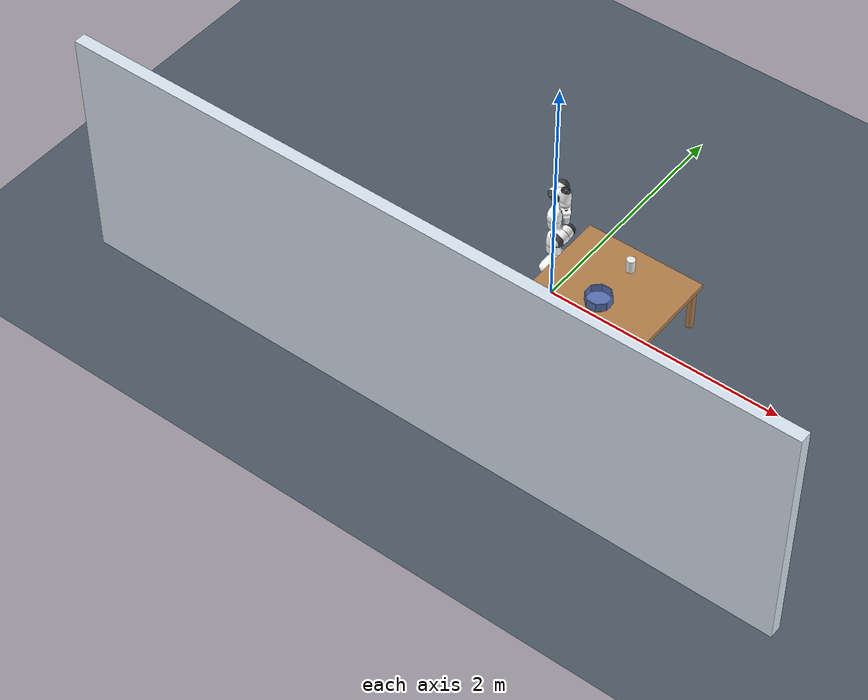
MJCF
<mujoco model="cup_pour_scene">

  <!--
    meshdir must be set at the top level: when panda.xml is included,
    MuJoCo ignores the included file's compiler tag, so we need to
    point at the menagerie's assets directory here.
  -->
  <compiler angle="radian" autolimits="true"
            meshdir="../../mujoco_menagerie/franka_emika_panda/assets"/>
  <option timestep="0.002" gravity="0 0 -9.81"/>

  <include file="_panda_for_pour.xml"/>

  <visual>
    <headlight diffuse="0.4 0.4 0.4" ambient="0.2 0.2 0.2" specular="0 0 0"/>
    <rgba haze="0.15 0.25 0.35 1"/>
    <global azimuth="120" elevation="-20" offwidth="640" offheight="480"/>
  </visual>

  <statistic center="0.4 0 0.5" extent="1.2"/>

  <asset>
    <!-- Backdrop / floor -->
    <texture type="skybox" builtin="gradient" rgb1="0.3 0.5 0.8"
             rgb2="0.1 0.2 0.4" width="512" height="3072"/>
    <texture type="2d" name="lab_floor" builtin="checker"
             rgb1="0.35 0.4 0.45" rgb2="0.25 0.3 0.35" width="512" height="512"
             mark="cross" markrgb="0.8 0.8 0.9"/>
    <material name="groundplane" texture="lab_floor" texrepeat="20 20"
              reflectance="0.3" shininess="0.1"/>

    <!-- Workspace materials -->
    <material name="table_mat" rgba="0.7 0.5 0.3 1" reflectance="0.4" shininess="0.3"/>
    <material name="pedestal_mat" rgba="0.3 0.4 0.7 1" reflectance="0.5" shininess="0.4"/>
    <material name="lab_wall" rgba="0.85 0.9 0.95 1" reflectance="0.1"/>

    <!-- Object materials -->
    <!-- Plastic cup: slightly off-white, low specular for plastic look -->
    <material name="plastic_cup_mat" rgba="0.95 0.95 0.92 1"
              specular="0.2" shininess="0.15" reflectance="0.05"/>
    <!-- Bowl: ceramic-ish blue -->
    <material name="bowl_mat" rgba="0.35 0.45 0.7 1"
              specular="0.6" shininess="0.4" reflectance="0.2"/>
  </asset>

  <worldbody>
    <!-- Lighting -->
    <light pos="0 0 4" dir="0 0 -1" directional="true" diffuse="0.5 0.5 0.5"/>
    <light pos="2 2 3" dir="-0.5 -0.5 -1" diffuse="0.25 0.25 0.25"/>
    <light pos="-2 2 3" dir="0.5 -0.5 -1" diffuse="0.2 0.2 0.2"/>
    <light pos="0 -2 3" dir="0 0.5 -1" diffuse="0.2 0.2 0.2"/>

    <geom name="floor" size="10 10 0.01" type="plane" material="groundplane"/>

    <body name="robot_pedestal" pos="0 0 -0.005">
      <geom name="pedestal_base" type="box" size="0.18 0.18 0.005"
            pos="0 0 0" material="pedestal_mat"/>
    </body>

    <!-- Main work table — top at z=0.42, centred at x=+0.55 (forward of base) -->
    <body name="table" pos="0.55 0 0.40">
      <geom name="table_top" type="box" size="0.5 0.4 0.02"
            pos="0 0 0" material="table_mat"
            friction="1 0.5 0.0001"/>
      <geom name="table_leg1" type="cylinder" size="0.03 0.2"
            pos="0.45 0.35 -0.2" material="table_mat"/>
      <geom name="table_leg2" type="cylinder" size="0.03 0.2"
            pos="0.45 -0.35 -0.2" material="table_mat"/>
      <geom name="table_leg3" type="cylinder" size="0.03 0.2"
            pos="-0.45 0.35 -0.2" material="table_mat"/>
      <geom name="table_leg4" type="cylinder" size="0.03 0.2"
            pos="-0.45 -0.35 -0.2" material="table_mat"/>
    </body>

    <body name="plastic_cup" pos="0.55 0.20 0.475">
      <freejoint name="plastic_cup_free"/>
      <geom name="plastic_cup_geom" type="cylinder" size="0.035 0.055"
            material="plastic_cup_mat"
            condim="6" friction="1 0.5 0.0001"
            solimp="0.99 0.999 0.001" solref="0.01 1"/>
      <inertial pos="0 0 0" mass="0.08"
                diaginertia="0.00009 0.00009 0.00005"/>
    </body>

    <body name="bowl" pos="0.55 -0.20 0.42">
      <!-- Bottom disk (thin) -->
      <geom name="bowl_bottom" type="cylinder" size="0.1 0.005"
            pos="0 0 0.005" material="bowl_mat"
            condim="6" friction="0.9 0.4 0.001"
            solimp="0.99 0.999 0.001" solref="0.01 1"/>

      <geom name="bowl_wall_0" type="box" size="0.039 0.0025 0.0375"
            pos="0.0975 0 0.0425" euler="0 0 1.5708"
            material="bowl_mat" condim="6" friction="0.9 0.4 0.001"/>
      <geom name="bowl_wall_45" type="box" size="0.039 0.0025 0.0375"
            pos="0.0689 0.0689 0.0425" euler="0 0 2.3562"
            material="bowl_mat" condim="6" friction="0.9 0.4 0.001"/>
      <geom name="bowl_wall_90" type="box" size="0.039 0.0025 0.0375"
            pos="0 0.0975 0.0425" euler="0 0 3.1416"
            material="bowl_mat" condim="6" friction="0.9 0.4 0.001"/>
      <geom name="bowl_wall_135" type="box" size="0.039 0.0025 0.0375"
            pos="-0.0689 0.0689 0.0425" euler="0 0 3.9270"
            material="bowl_mat" condim="6" friction="0.9 0.4 0.001"/>
      <geom name="bowl_wall_180" type="box" size="0.039 0.0025 0.0375"
            pos="-0.0975 0 0.0425" euler="0 0 1.5708"
            material="bowl_mat" condim="6" friction="0.9 0.4 0.001"/>
      <geom name="bowl_wall_225" type="box" size="0.039 0.0025 0.0375"
            pos="-0.0689 -0.0689 0.0425" euler="0 0 2.3562"
            material="bowl_mat" condim="6" friction="0.9 0.4 0.001"/>
      <geom name="bowl_wall_270" type="box" size="0.039 0.0025 0.0375"
            pos="0 -0.0975 0.0425" euler="0 0 3.1416"
            material="bowl_mat" condim="6" friction="0.9 0.4 0.001"/>
      <geom name="bowl_wall_315" type="box" size="0.039 0.0025 0.0375"
            pos="0.0689 -0.0689 0.0425" euler="0 0 3.9270"
            material="bowl_mat" condim="6" friction="0.9 0.4 0.001"/>

      <!-- Drop target site for pour primitive -->
      <site name="bowl_target" pos="0 0 0.05"
            size="0.08 0.08 0.001" rgba="0 0 0 0" type="box"/>
    </body>

    <!--
      Cameras.

      birdview: above-and-side, mimics real Kinect mounted on
      a tripod looking down at the table. +Y offset and high z,
      looking at the table centre.
    -->
    <body name="camera_birdview" pos="0.55 -0.7 1.35">
      <camera name="birdview" fovy="50" pos="0 0 0"
              xyaxes="1 0 0 0 0.6 0.8"/>
    </body>

    <!--
      sideview: perpendicular to robot-table axis, table-level.
      +Y side, looking inward (-Y direction).
    -->
    <body name="camera_sideview" pos="0.55 0.95 0.65">
      <camera name="sideview" fovy="55" pos="0 0 0"
              xyaxes="-1 0 0 0 -0.25 0.97"/>
    </body>

    <!-- Back wall for visual grounding -->
    <body name="back_wall" pos="0 -1.6 1">
      <geom name="wall_back" type="box" size="3 0.05 1" material="lab_wall"/>
    </body>

    <!-- Keypoint marker pool — kept for parity with perception_test_scene -->
    <body name="keypoint_markers" pos="0 0 0">
      <site name="keypoint_0" pos="0 0 -10" size="0.01" rgba="1 0 0 0" type="sphere"/>
      <site name="keypoint_1" pos="0 0 -10" size="0.01" rgba="1 0.2 0 0" type="sphere"/>
      <site name="keypoint_2" pos="0 0 -10" size="0.01" rgba="1 0.4 0 0" type="sphere"/>
      <site name="keypoint_3" pos="0 0 -10" size="0.01" rgba="1 0.6 0 0" type="sphere"/>
    </body>
  </worldbody>

  <keyframe>
    <key name="pour_start"
         qpos="0 -0.3 0 -2.0 0 1.7 -0.7853  0.04 0.04  0.55 0.20 0.475 1 0 0 0"
         ctrl="0 -0.3 0 -2.0 0 1.7 -0.7853  255"/>
  </keyframe>

</mujoco>

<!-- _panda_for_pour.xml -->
<mujoco model="panda">

  <option integrator="implicitfast"/>

  <default>
    <default class="panda">
      <material specular="0.5" shininess="0.25"/>
      <joint armature="0.1" damping="1" axis="0 0 1" range="-2.8973 2.8973"/>
      <general dyntype="none" biastype="affine" ctrlrange="-2.8973 2.8973" forcerange="-87 87"/>
      <default class="finger">
        <joint axis="0 1 0" type="slide" range="0 0.04"/>
      </default>

      <default class="visual">
        <geom type="mesh" contype="0" conaffinity="0" group="2"/>
      </default>
      <default class="collision">
        <geom type="mesh" group="3"/>
        <default class="fingertip_pad_collision_1">
          <geom type="box" size="0.0085 0.004 0.0085" pos="0 0.0055 0.0445"/>
        </default>
        <default class="fingertip_pad_collision_2">
          <geom type="box" size="0.003 0.002 0.003" pos="0.0055 0.002 0.05"/>
        </default>
        <default class="fingertip_pad_collision_3">
          <geom type="box" size="0.003 0.002 0.003" pos="-0.0055 0.002 0.05"/>
        </default>
        <default class="fingertip_pad_collision_4">
          <geom type="box" size="0.003 0.002 0.0035" pos="0.0055 0.002 0.0395"/>
        </default>
        <default class="fingertip_pad_collision_5">
          <geom type="box" size="0.003 0.002 0.0035" pos="-0.0055 0.002 0.0395"/>
        </default>
      </default>
    </default>
  </default>

  <asset>
    <material class="panda" name="white" rgba="1 1 1 1"/>
    <material class="panda" name="off_white" rgba="0.901961 0.921569 0.929412 1"/>
    <material class="panda" name="black" rgba="0.25 0.25 0.25 1"/>
    <material class="panda" name="green" rgba="0 1 0 1"/>
    <material class="panda" name="light_blue" rgba="0.039216 0.541176 0.780392 1"/>

    <!-- Collision meshes -->
    <mesh name="link0_c" file="link0.stl"/>
    <mesh name="link1_c" file="link1.stl"/>
    <mesh name="link2_c" file="link2.stl"/>
    <mesh name="link3_c" file="link3.stl"/>
    <mesh name="link4_c" file="link4.stl"/>
    <mesh name="link5_c0" file="link5_collision_0.obj"/>
    <mesh name="link5_c1" file="link5_collision_1.obj"/>
    <mesh name="link5_c2" file="link5_collision_2.obj"/>
    <mesh name="link6_c" file="link6.stl"/>
    <mesh name="link7_c" file="link7.stl"/>
    <mesh name="hand_c" file="hand.stl"/>

    <!-- Visual meshes -->
    <mesh file="link0_0.obj"/>
    <mesh file="link0_1.obj"/>
    <mesh file="link0_2.obj"/>
    <mesh file="link0_3.obj"/>
    <mesh file="link0_4.obj"/>
    <mesh file="link0_5.obj"/>
    <mesh file="link0_7.obj"/>
    <mesh file="link0_8.obj"/>
    <mesh file="link0_9.obj"/>
    <mesh file="link0_10.obj"/>
    <mesh file="link0_11.obj"/>
    <mesh file="link1.obj"/>
    <mesh file="link2.obj"/>
    <mesh file="link3_0.obj"/>
    <mesh file="link3_1.obj"/>
    <mesh file="link3_2.obj"/>
    <mesh file="link3_3.obj"/>
    <mesh file="link4_0.obj"/>
    <mesh file="link4_1.obj"/>
    <mesh file="link4_2.obj"/>
    <mesh file="link4_3.obj"/>
    <mesh file="link5_0.obj"/>
    <mesh file="link5_1.obj"/>
    <mesh file="link5_2.obj"/>
    <mesh file="link6_0.obj"/>
    <mesh file="link6_1.obj"/>
    <mesh file="link6_2.obj"/>
    <mesh file="link6_3.obj"/>
    <mesh file="link6_4.obj"/>
    <mesh file="link6_5.obj"/>
    <mesh file="link6_6.obj"/>
    <mesh file="link6_7.obj"/>
    <mesh file="link6_8.obj"/>
    <mesh file="link6_9.obj"/>
    <mesh file="link6_10.obj"/>
    <mesh file="link6_11.obj"/>
    <mesh file="link6_12.obj"/>
    <mesh file="link6_13.obj"/>
    <mesh file="link6_14.obj"/>
    <mesh file="link6_15.obj"/>
    <mesh file="link6_16.obj"/>
    <mesh file="link7_0.obj"/>
    <mesh file="link7_1.obj"/>
    <mesh file="link7_2.obj"/>
    <mesh file="link7_3.obj"/>
    <mesh file="link7_4.obj"/>
    <mesh file="link7_5.obj"/>
    <mesh file="link7_6.obj"/>
    <mesh file="link7_7.obj"/>
    <mesh file="hand_0.obj"/>
    <mesh file="hand_1.obj"/>
    <mesh file="hand_2.obj"/>
    <mesh file="hand_3.obj"/>
    <mesh file="hand_4.obj"/>
    <mesh file="finger_0.obj"/>
    <mesh file="finger_1.obj"/>
  </asset>

  <worldbody>
    <light name="top" pos="0 0 2" mode="trackcom"/>
    <body name="link0" childclass="panda">
      <inertial mass="0.629769" pos="-0.041018 -0.00014 0.049974"
        fullinertia="0.00315 0.00388 0.004285 8.2904e-7 0.00015 8.2299e-6"/>
      <geom mesh="link0_0" material="off_white" class="visual"/>
      <geom mesh="link0_1" material="black" class="visual"/>
      <geom mesh="link0_2" material="off_white" class="visual"/>
      <geom mesh="link0_3" material="black" class="visual"/>
      <geom mesh="link0_4" material="off_white" class="visual"/>
      <geom mesh="link0_5" material="black" class="visual"/>
      <geom mesh="link0_7" material="white" class="visual"/>
      <geom mesh="link0_8" material="white" class="visual"/>
      <geom mesh="link0_9" material="black" class="visual"/>
      <geom mesh="link0_10" material="off_white" class="visual"/>
      <geom mesh="link0_11" material="white" class="visual"/>
      <geom mesh="link0_c" class="collision"/>
      <body name="link1" pos="0 0 0.333">
        <inertial mass="4.970684" pos="0.003875 0.002081 -0.04762"
          fullinertia="0.70337 0.70661 0.0091170 -0.00013900 0.0067720 0.019169"/>
        <joint name="joint1"/>
        <geom material="white" mesh="link1" class="visual"/>
        <geom mesh="link1_c" class="collision"/>
        <body name="link2" quat="1 -1 0 0">
          <inertial mass="0.646926" pos="-0.003141 -0.02872 0.003495"
            fullinertia="0.0079620 2.8110e-2 2.5995e-2 -3.925e-3 1.0254e-2 7.04e-4"/>
          <joint name="joint2" range="-1.7628 1.7628"/>
          <geom material="white" mesh="link2" class="visual"/>
          <geom mesh="link2_c" class="collision"/>
          <body name="link3" pos="0 -0.316 0" quat="1 1 0 0">
            <joint name="joint3"/>
            <inertial mass="3.228604" pos="2.7518e-2 3.9252e-2 -6.6502e-2"
              fullinertia="3.7242e-2 3.6155e-2 1.083e-2 -4.761e-3 -1.1396e-2 -1.2805e-2"/>
            <geom mesh="link3_0" material="white" class="visual"/>
            <geom mesh="link3_1" material="white" class="visual"/>
            <geom mesh="link3_2" material="white" class="visual"/>
            <geom mesh="link3_3" material="black" class="visual"/>
            <geom mesh="link3_c" class="collision"/>
            <body name="link4" pos="0.0825 0 0" quat="1 1 0 0">
              <inertial mass="3.587895" pos="-5.317e-2 1.04419e-1 2.7454e-2"
                fullinertia="2.5853e-2 1.9552e-2 2.8323e-2 7.796e-3 -1.332e-3 8.641e-3"/>
              <joint name="joint4" range="-3.0718 -0.0698"/>
              <geom mesh="link4_0" material="white" class="visual"/>
              <geom mesh="link4_1" material="white" class="visual"/>
              <geom mesh="link4_2" material="black" class="visual"/>
              <geom mesh="link4_3" material="white" class="visual"/>
              <geom mesh="link4_c" class="collision"/>
              <body name="link5" pos="-0.0825 0.384 0" quat="1 -1 0 0">
                <inertial mass="1.225946" pos="-1.1953e-2 4.1065e-2 -3.8437e-2"
                  fullinertia="3.5549e-2 2.9474e-2 8.627e-3 -2.117e-3 -4.037e-3 2.29e-4"/>
                <joint name="joint5"/>
                <geom mesh="link5_0" material="black" class="visual"/>
                <geom mesh="link5_1" material="white" class="visual"/>
                <geom mesh="link5_2" material="white" class="visual"/>
                <geom mesh="link5_c0" class="collision"/>
                <geom mesh="link5_c1" class="collision"/>
                <geom mesh="link5_c2" class="collision"/>
                <body name="link6" quat="1 1 0 0">
                  <inertial mass="1.666555" pos="6.0149e-2 -1.4117e-2 -1.0517e-2"
                    fullinertia="1.964e-3 4.354e-3 5.433e-3 1.09e-4 -1.158e-3 3.41e-4"/>
                  <joint name="joint6" range="-0.0175 3.7525"/>
                  <geom mesh="link6_0" material="off_white" class="visual"/>
                  <geom mesh="link6_1" material="white" class="visual"/>
                  <geom mesh="link6_2" material="black" class="visual"/>
                  <geom mesh="link6_3" material="white" class="visual"/>
                  <geom mesh="link6_4" material="white" class="visual"/>
                  <geom mesh="link6_5" material="white" class="visual"/>
                  <geom mesh="link6_6" material="white" class="visual"/>
                  <geom mesh="link6_7" material="light_blue" class="visual"/>
                  <geom mesh="link6_8" material="light_blue" class="visual"/>
                  <geom mesh="link6_9" material="black" class="visual"/>
                  <geom mesh="link6_10" material="black" class="visual"/>
                  <geom mesh="link6_11" material="white" class="visual"/>
                  <geom mesh="link6_12" material="green" class="visual"/>
                  <geom mesh="link6_13" material="white" class="visual"/>
                  <geom mesh="link6_14" material="black" class="visual"/>
                  <geom mesh="link6_15" material="black" class="visual"/>
                  <geom mesh="link6_16" material="white" class="visual"/>
                  <geom mesh="link6_c" class="collision"/>
                  <body name="link7" pos="0.088 0 0" quat="1 1 0 0">
                    <inertial mass="7.35522e-01" pos="1.0517e-2 -4.252e-3 6.1597e-2"
                      fullinertia="1.2516e-2 1.0027e-2 4.815e-3 -4.28e-4 -1.196e-3 -7.41e-4"/>
                    <joint name="joint7"/>
                    <geom mesh="link7_0" material="white" class="visual"/>
                    <geom mesh="link7_1" material="black" class="visual"/>
                    <geom mesh="link7_2" material="black" class="visual"/>
                    <geom mesh="link7_3" material="black" class="visual"/>
                    <geom mesh="link7_4" material="black" class="visual"/>
                    <geom mesh="link7_5" material="black" class="visual"/>
                    <geom mesh="link7_6" material="black" class="visual"/>
                    <geom mesh="link7_7" material="white" class="visual"/>
                    <geom mesh="link7_c" class="collision"/>
                    <body name="hand" pos="0 0 0.107" quat="0.9238795 0 0 -0.3826834">
                      <inertial mass="0.73" pos="-0.01 0 0.03" diaginertia="0.001 0.0025 0.0017"/>
                      <site name="pinch" pos="0 0 0.1034" size="0.005"
                            rgba="1 0 0 0.5" group="4"/>
                      <geom mesh="hand_0" material="off_white" class="visual"/>
                      <geom mesh="hand_1" material="black" class="visual"/>
                      <geom mesh="hand_2" material="black" class="visual"/>
                      <geom mesh="hand_3" material="white" class="visual"/>
                      <geom mesh="hand_4" material="off_white" class="visual"/>
                      <geom mesh="hand_c" class="collision"/>
                      <body name="left_finger" pos="0 0 0.0584">
                        <inertial mass="0.015" pos="0 0 0" diaginertia="2.375e-6 2.375e-6 7.5e-7"/>
                        <joint name="finger_joint1" class="finger"/>
                        <geom mesh="finger_0" material="off_white" class="visual"/>
                        <geom mesh="finger_1" material="black" class="visual"/>
                        <geom mesh="finger_0" class="collision"/>
                        <geom class="fingertip_pad_collision_1"/>
                        <geom class="fingertip_pad_collision_2"/>
                        <geom class="fingertip_pad_collision_3"/>
                        <geom class="fingertip_pad_collision_4"/>
                        <geom class="fingertip_pad_collision_5"/>
                      </body>
                      <body name="right_finger" pos="0 0 0.0584" quat="0 0 0 1">
                        <inertial mass="0.015" pos="0 0 0" diaginertia="2.375e-6 2.375e-6 7.5e-7"/>
                        <joint name="finger_joint2" class="finger"/>
                        <geom mesh="finger_0" material="off_white" class="visual"/>
                        <geom mesh="finger_1" material="black" class="visual"/>
                        <geom mesh="finger_0" class="collision"/>
                        <geom class="fingertip_pad_collision_1"/>
                        <geom class="fingertip_pad_collision_2"/>
                        <geom class="fingertip_pad_collision_3"/>
                        <geom class="fingertip_pad_collision_4"/>
                        <geom class="fingertip_pad_collision_5"/>
                      </body>
                    </body>
                  </body>
                </body>
              </body>
            </body>
          </body>
        </body>
      </body>
    </body>
  </worldbody>

  <tendon>
    <fixed name="split">
      <joint joint="finger_joint1" coef="0.5"/>
      <joint joint="finger_joint2" coef="0.5"/>
    </fixed>
  </tendon>

  <equality>
    <joint joint1="finger_joint1" joint2="finger_joint2" solimp="0.95 0.99 0.001" solref="0.005 1"/>
  </equality>

  <actuator>
    <general class="panda" name="actuator1" joint="joint1" gainprm="4500" biasprm="0 -4500 -450"/>
    <general class="panda" name="actuator2" joint="joint2" gainprm="4500" biasprm="0 -4500 -450"
      ctrlrange="-1.7628 1.7628"/>
    <general class="panda" name="actuator3" joint="joint3" gainprm="3500" biasprm="0 -3500 -350"/>
    <general class="panda" name="actuator4" joint="joint4" gainprm="3500" biasprm="0 -3500 -350"
      ctrlrange="-3.0718 -0.0698"/>
    <general class="panda" name="actuator5" joint="joint5" gainprm="2000" biasprm="0 -2000 -200" forcerange="-12 12"/>
    <general class="panda" name="actuator6" joint="joint6" gainprm="2000" biasprm="0 -2000 -200" forcerange="-12 12"
      ctrlrange="-0.0175 3.7525"/>
    <general class="panda" name="actuator7" joint="joint7" gainprm="2000" biasprm="0 -2000 -200" forcerange="-12 12"/>
    <!-- Remap original ctrlrange (0, 0.04) to (0, 255): 0.04 * 100 / 255 = 0.01568627451 -->
    <general class="panda" name="actuator8" tendon="split" forcerange="-100 100" ctrlrange="0 255"
      gainprm="0.01568627451 0 0" biasprm="0 -100 -10"/>
  </actuator>

  <keyframe>
    <key name="home" qpos="0 0 0 -1.57079 0 1.57079 -0.7853 0.04 0.04" ctrl="0 0 0 -1.57079 0 1.57079 -0.7853 255"/>
  </keyframe>

  <contact>
    <exclude body1="link0" body2="link1"/>
  </contact>
</mujoco>
